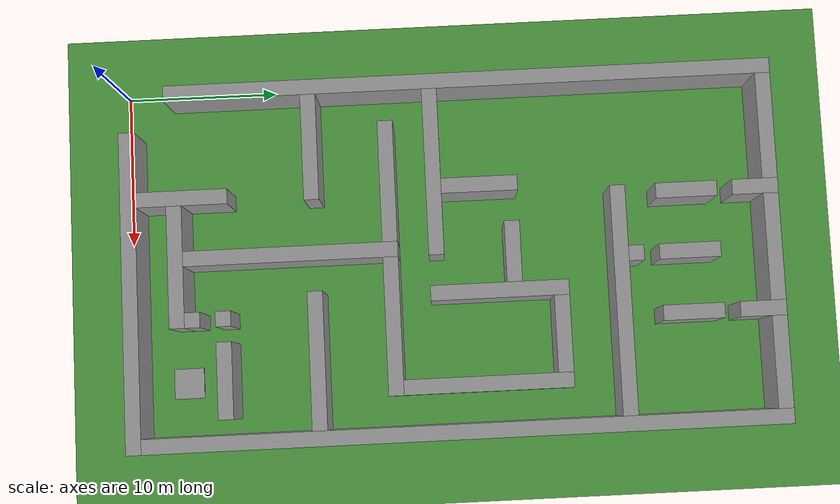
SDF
<sdf version="1.6">
 <world name="default">
  <light name="sun" type="directional">
   <pose>0 0 10 0 -0 0</pose>
   <diffuse>0.8 0.8 0.8 1</diffuse>
   <specular>0.1 0.1 0.1 1</specular>
   <attenuation>
    <range>1000</range>
    <constant>0.9</constant>
    <linear>0.01</linear>
    <quadratic>0.001</quadratic>
   </attenuation>
   <direction>-0.5 0.5 -1</direction>
  </light>
  <model name="ground_plane">
   <static>1</static>
   <link name="link">
    <collision name="collision">
     <geometry><plane><normal>0 0 1</normal><size>100 100</size></plane></geometry>
     <surface><friction><ode><mu>100</mu><mu2>50</mu2></ode></friction></surface>
    </collision>
    <visual name="visual">
     <cast_shadows>0</cast_shadows>
     <geometry><plane><normal>0 0 1</normal><size>100 100</size></plane></geometry>
     <material>
      <script><uri>file://media/materials/scripts/gazebo.material</uri><name>Gazebo/Grass</name></script>
     </material>
    </visual>
   </link>
  </model>
  <gravity>0 0 -9.8</gravity>
  <magnetic_field>6e-06 2.3e-05 -4.2e-05</magnetic_field>
  <atmosphere type="adiabatic"/>
  <physics name="default_physics" default="0" type="ode">
   <max_step_size>0.004</max_step_size>
   <real_time_factor>1</real_time_factor>
   <real_time_update_rate>250</real_time_update_rate>
  </physics>
  <scene><ambient>0.4 0.4 0.4 1</ambient><background>0.7 0.7 0.7 1</background><shadows>1</shadows></scene>
  <spherical_coordinates>
   <surface_model>EARTH_WGS84</surface_model>
   <latitude_deg>0</latitude_deg>
   <longitude_deg>0</longitude_deg>
   <elevation>0</elevation>
   <heading_deg>0</heading_deg>
  </spherical_coordinates>
  <model name="wall">
   <pose>13.500000 0.500000 2 0 0 0</pose>
   <static>1</static>
   <link name="wall-link">
    <collision name="collision"><geometry><box><size>21 1 4</size></box></geometry></collision>
    <visual name="visual">
     <geometry><box><size>21 1 4</size></box></geometry>
     <material>
      <script><name>Gazebo/Grey</name><uri>file://media/materials/scripts/gazebo.material</uri></script>
     </material>
    </visual>
    <gravity>0</gravity>
   </link>
  </model>
  <model name="wall">
   <pose>7.500000 4.000000 2 0 0 0</pose>
   <static>1</static>
   <link name="wall-link">
    <collision name="collision"><geometry><box><size>1 6 4</size></box></geometry></collision>
    <visual name="visual">
     <geometry><box><size>1 6 4</size></box></geometry>
     <material>
      <script><name>Gazebo/Grey</name><uri>file://media/materials/scripts/gazebo.material</uri></script>
     </material>
    </visual>
    <gravity>0</gravity>
   </link>
  </model>
  <model name="wall">
   <pose>23.500000 22.000000 2 0 0 0</pose>
   <static>1</static>
   <link name="wall-link">
    <collision name="collision"><geometry><box><size>1 42 4</size></box></geometry></collision>
    <visual name="visual">
     <geometry><box><size>1 42 4</size></box></geometry>
     <material>
      <script><name>Gazebo/Grey</name><uri>file://media/materials/scripts/gazebo.material</uri></script>
     </material>
    </visual>
    <gravity>0</gravity>
   </link>
  </model>
  <model name="wall">
   <pose>0.500000 23.000000 2 0 0 0</pose>
   <static>1</static>
   <link name="wall-link">
    <collision name="collision"><geometry><box><size>1 40 4</size></box></geometry></collision>
    <visual name="visual">
     <geometry><box><size>1 40 4</size></box></geometry>
     <material>
      <script><name>Gazebo/Grey</name><uri>file://media/materials/scripts/gazebo.material</uri></script>
     </material>
    </visual>
    <gravity>0</gravity>
   </link>
  </model>
  <model name="wall">
   <pose>12.000000 3.500000 2 0 0 0</pose>
   <static>1</static>
   <link name="wall-link">
    <collision name="collision"><geometry><box><size>8 1 4</size></box></geometry></collision>
    <visual name="visual">
     <geometry><box><size>8 1 4</size></box></geometry>
     <material>
      <script><name>Gazebo/Grey</name><uri>file://media/materials/scripts/gazebo.material</uri></script>
     </material>
    </visual>
    <gravity>0</gravity>
   </link>
  </model>
  <model name="wall">
   <pose>11.500000 11.000000 2 0 0 0</pose>
   <static>1</static>
   <link name="wall-link">
    <collision name="collision"><geometry><box><size>1 14 4</size></box></geometry></collision>
    <visual name="visual">
     <geometry><box><size>1 14 4</size></box></geometry>
     <material>
      <script><name>Gazebo/Grey</name><uri>file://media/materials/scripts/gazebo.material</uri></script>
     </material>
    </visual>
    <gravity>0</gravity>
   </link>
  </model>
  <model name="wall">
   <pose>15.500000 4.500000 2 0 0 0</pose>
   <static>1</static>
   <link name="wall-link">
    <collision name="collision"><geometry><box><size>1 1 4</size></box></geometry></collision>
    <visual name="visual">
     <geometry><box><size>1 1 4</size></box></geometry>
     <material>
      <script><name>Gazebo/Grey</name><uri>file://media/materials/scripts/gazebo.material</uri></script>
     </material>
    </visual>
    <gravity>0</gravity>
   </link>
  </model>
  <model name="wall">
   <pose>15.500000 6.500000 2 0 0 0</pose>
   <static>1</static>
   <link name="wall-link">
    <collision name="collision"><geometry><box><size>1 1 4</size></box></geometry></collision>
    <visual name="visual">
     <geometry><box><size>1 1 4</size></box></geometry>
     <material>
      <script><name>Gazebo/Grey</name><uri>file://media/materials/scripts/gazebo.material</uri></script>
     </material>
    </visual>
    <gravity>0</gravity>
   </link>
  </model>
  <model name="wall">
   <pose>19.500000 6.500000 2 0 0 0</pose>
   <static>1</static>
   <link name="wall-link">
    <collision name="collision"><geometry><box><size>5 1 4</size></box></geometry></collision>
    <visual name="visual">
     <geometry><box><size>5 1 4</size></box></geometry>
     <material>
      <script><name>Gazebo/Grey</name><uri>file://media/materials/scripts/gazebo.material</uri></script>
     </material>
    </visual>
    <gravity>0</gravity>
   </link>
  </model>
  <model name="wall">
   <pose>4.500000 12.500000 2 0 0 0</pose>
   <static>1</static>
   <link name="wall-link">
    <collision name="collision"><geometry><box><size>7 1 4</size></box></geometry></collision>
    <visual name="visual">
     <geometry><box><size>7 1 4</size></box></geometry>
     <material>
      <script><name>Gazebo/Grey</name><uri>file://media/materials/scripts/gazebo.material</uri></script>
     </material>
    </visual>
    <gravity>0</gravity>
   </link>
  </model>
  <model name="wall">
   <pose>18.500000 12.500000 2 0 0 0</pose>
   <static>1</static>
   <link name="wall-link">
    <collision name="collision"><geometry><box><size>9 1 4</size></box></geometry></collision>
    <visual name="visual">
     <geometry><box><size>9 1 4</size></box></geometry>
     <material>
      <script><name>Gazebo/Grey</name><uri>file://media/materials/scripts/gazebo.material</uri></script>
     </material>
    </visual>
    <gravity>0</gravity>
   </link>
  </model>
  <model name="wall">
   <pose>7.000000 17.500000 2 0 0 0</pose>
   <static>1</static>
   <link name="wall-link">
    <collision name="collision"><geometry><box><size>8 1 4</size></box></geometry></collision>
    <visual name="visual">
     <geometry><box><size>8 1 4</size></box></geometry>
     <material>
      <script><name>Gazebo/Grey</name><uri>file://media/materials/scripts/gazebo.material</uri></script>
     </material>
    </visual>
    <gravity>0</gravity>
   </link>
  </model>
  <model name="wall">
   <pose>16.500000 17.500000 2 0 0 0</pose>
   <static>1</static>
   <link name="wall-link">
    <collision name="collision"><geometry><box><size>9 1 4</size></box></geometry></collision>
    <visual name="visual">
     <geometry><box><size>9 1 4</size></box></geometry>
     <material>
      <script><name>Gazebo/Grey</name><uri>file://media/materials/scripts/gazebo.material</uri></script>
     </material>
    </visual>
    <gravity>0</gravity>
   </link>
  </model>
  <model name="wall">
   <pose>20.500000 23.500000 2 0 0 0</pose>
   <static>1</static>
   <link name="wall-link">
    <collision name="collision"><geometry><box><size>1 11 4</size></box></geometry></collision>
    <visual name="visual">
     <geometry><box><size>1 11 4</size></box></geometry>
     <material>
      <script><name>Gazebo/Grey</name><uri>file://media/materials/scripts/gazebo.material</uri></script>
     </material>
    </visual>
    <gravity>0</gravity>
   </link>
  </model>
  <model name="wall">
   <pose>6.500000 20.500000 2 0 0 0</pose>
   <static>1</static>
   <link name="wall-link">
    <collision name="collision"><geometry><box><size>11 1 4</size></box></geometry></collision>
    <visual name="visual">
     <geometry><box><size>11 1 4</size></box></geometry>
     <material>
      <script><name>Gazebo/Grey</name><uri>file://media/materials/scripts/gazebo.material</uri></script>
     </material>
    </visual>
    <gravity>0</gravity>
   </link>
  </model>
  <model name="wall">
   <pose>14.500000 24.500000 2 0 0 0</pose>
   <static>1</static>
   <link name="wall-link">
    <collision name="collision"><geometry><box><size>1 9 4</size></box></geometry></collision>
    <visual name="visual">
     <geometry><box><size>1 9 4</size></box></geometry>
     <material>
      <script><name>Gazebo/Grey</name><uri>file://media/materials/scripts/gazebo.material</uri></script>
     </material>
    </visual>
    <gravity>0</gravity>
   </link>
  </model>
  <model name="wall">
   <pose>7.500000 23.500000 2 0 0 0</pose>
   <static>1</static>
   <link name="wall-link">
    <collision name="collision"><geometry><box><size>1 5 4</size></box></geometry></collision>
    <visual name="visual">
     <geometry><box><size>1 5 4</size></box></geometry>
     <material>
      <script><name>Gazebo/Grey</name><uri>file://media/materials/scripts/gazebo.material</uri></script>
     </material>
    </visual>
    <gravity>0</gravity>
   </link>
  </model>
  <model name="wall">
   <pose>12.000000 25.500000 2 0 0 0</pose>
   <static>1</static>
   <link name="wall-link">
    <collision name="collision"><geometry><box><size>4 1 4</size></box></geometry></collision>
    <visual name="visual">
     <geometry><box><size>4 1 4</size></box></geometry>
     <material>
      <script><name>Gazebo/Grey</name><uri>file://media/materials/scripts/gazebo.material</uri></script>
     </material>
    </visual>
    <gravity>0</gravity>
   </link>
  </model>
  <model name="wall">
   <pose>17.500000 28.500000 2 0 0 0</pose>
   <static>1</static>
   <link name="wall-link">
    <collision name="collision"><geometry><box><size>5 1 4</size></box></geometry></collision>
    <visual name="visual">
     <geometry><box><size>5 1 4</size></box></geometry>
     <material>
      <script><name>Gazebo/Grey</name><uri>file://media/materials/scripts/gazebo.material</uri></script>
     </material>
    </visual>
    <gravity>0</gravity>
   </link>
  </model>
  <model name="wall">
   <pose>15.500000 32.500000 2 0 0 0</pose>
   <static>1</static>
   <link name="wall-link">
    <collision name="collision"><geometry><box><size>15 1 4</size></box></geometry></collision>
    <visual name="visual">
     <geometry><box><size>15 1 4</size></box></geometry>
     <material>
      <script><name>Gazebo/Grey</name><uri>file://media/materials/scripts/gazebo.material</uri></script>
     </material>
    </visual>
    <gravity>0</gravity>
   </link>
  </model>
  <model name="wall">
   <pose>12.500000 33.500000 2 0 0 0</pose>
   <static>1</static>
   <link name="wall-link">
    <collision name="collision"><geometry><box><size>1 1 4</size></box></geometry></collision>
    <visual name="visual">
     <geometry><box><size>1 1 4</size></box></geometry>
     <material>
      <script><name>Gazebo/Grey</name><uri>file://media/materials/scripts/gazebo.material</uri></script>
     </material>
    </visual>
    <gravity>0</gravity>
   </link>
  </model>
  <model name="wall">
   <pose>8.500000 37.000000 2 0 0 0</pose>
   <static>1</static>
   <link name="wall-link">
    <collision name="collision"><geometry><box><size>1 4 4</size></box></geometry></collision>
    <visual name="visual">
     <geometry><box><size>1 4 4</size></box></geometry>
     <material>
      <script><name>Gazebo/Grey</name><uri>file://media/materials/scripts/gazebo.material</uri></script>
     </material>
    </visual>
    <gravity>0</gravity>
   </link>
  </model>
  <model name="wall">
   <pose>12.500000 37.000000 2 0 0 0</pose>
   <static>1</static>
   <link name="wall-link">
    <collision name="collision"><geometry><box><size>1 4 4</size></box></geometry></collision>
    <visual name="visual">
     <geometry><box><size>1 4 4</size></box></geometry>
     <material>
      <script><name>Gazebo/Grey</name><uri>file://media/materials/scripts/gazebo.material</uri></script>
     </material>
    </visual>
    <gravity>0</gravity>
   </link>
  </model>
  <model name="wall">
   <pose>16.500000 37.000000 2 0 0 0</pose>
   <static>1</static>
   <link name="wall-link">
    <collision name="collision"><geometry><box><size>1 4 4</size></box></geometry></collision>
    <visual name="visual">
     <geometry><box><size>1 4 4</size></box></geometry>
     <material>
      <script><name>Gazebo/Grey</name><uri>file://media/materials/scripts/gazebo.material</uri></script>
     </material>
    </visual>
    <gravity>0</gravity>
   </link>
  </model>
  <model name="wall">
   <pose>8.500000 41.500000 2 0 0 0</pose>
   <static>1</static>
   <link name="wall-link">
    <collision name="collision"><geometry><box><size>1 3 4</size></box></geometry></collision>
    <visual name="visual">
     <geometry><box><size>1 3 4</size></box></geometry>
     <material>
      <script><name>Gazebo/Grey</name><uri>file://media/materials/scripts/gazebo.material</uri></script>
     </material>
    </visual>
    <gravity>0</gravity>
   </link>
  </model>
  <model name="wall">
   <pose>16.500000 41.500000 2 0 0 0</pose>
   <static>1</static>
   <link name="wall-link">
    <collision name="collision"><geometry><box><size>1 3 4</size></box></geometry></collision>
    <visual name="visual">
     <geometry><box><size>1 3 4</size></box></geometry>
     <material>
      <script><name>Gazebo/Grey</name><uri>file://media/materials/scripts/gazebo.material</uri></script>
     </material>
    </visual>
    <gravity>0</gravity>
   </link>
  </model>
  <model name="wall">
   <pose>4.500000 42.500000 2 0 0 0</pose>
   <static>1</static>
   <link name="wall-link">
    <collision name="collision"><geometry><box><size>7 1 4</size></box></geometry></collision>
    <visual name="visual">
     <geometry><box><size>7 1 4</size></box></geometry>
     <material>
      <script><name>Gazebo/Grey</name><uri>file://media/materials/scripts/gazebo.material</uri></script>
     </material>
    </visual>
    <gravity>0</gravity>
   </link>
  </model>
  <model name="wall">
   <pose>12.500000 42.500000 2 0 0 0</pose>
   <static>1</static>
   <link name="wall-link">
    <collision name="collision"><geometry><box><size>7 1 4</size></box></geometry></collision>
    <visual name="visual">
     <geometry><box><size>7 1 4</size></box></geometry>
     <material>
      <script><name>Gazebo/Grey</name><uri>file://media/materials/scripts/gazebo.material</uri></script>
     </material>
    </visual>
    <gravity>0</gravity>
   </link>
  </model>
  <model name="wall">
   <pose>20.000000 42.500000 2 0 0 0</pose>
   <static>1</static>
   <link name="wall-link">
    <collision name="collision"><geometry><box><size>6 1 4</size></box></geometry></collision>
    <visual name="visual">
     <geometry><box><size>6 1 4</size></box></geometry>
     <material>
      <script><name>Gazebo/Grey</name><uri>file://media/materials/scripts/gazebo.material</uri></script>
     </material>
    </visual>
    <gravity>0</gravity>
   </link>
  </model>
  <model name="goal">
   <pose>19.5 3.5 0.05 0 -0 0</pose>
   <static>1</static>
   <link name="link">
    <collision name="collision"><geometry><box><size>2.0 2.0 0.1</size></box></geometry></collision>
    <visual name="visual">
     <geometry><box><size>2.0 2.0 0.1</size></box></geometry>
     <material>
      <script><name>Gazebo/Grey</name><uri>file://media/materials/scripts/gazebo.material</uri></script>
     </material>
    </visual>
   </link>
  </model>
 </world>
</sdf>
